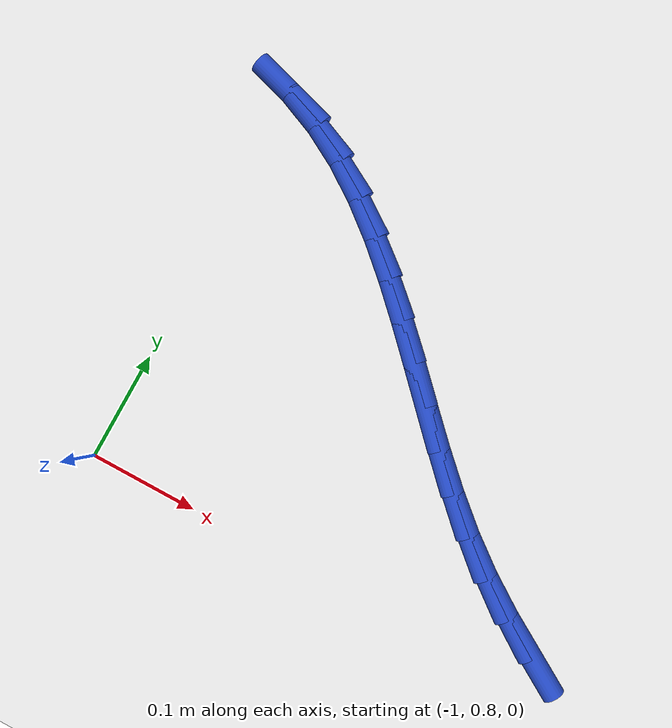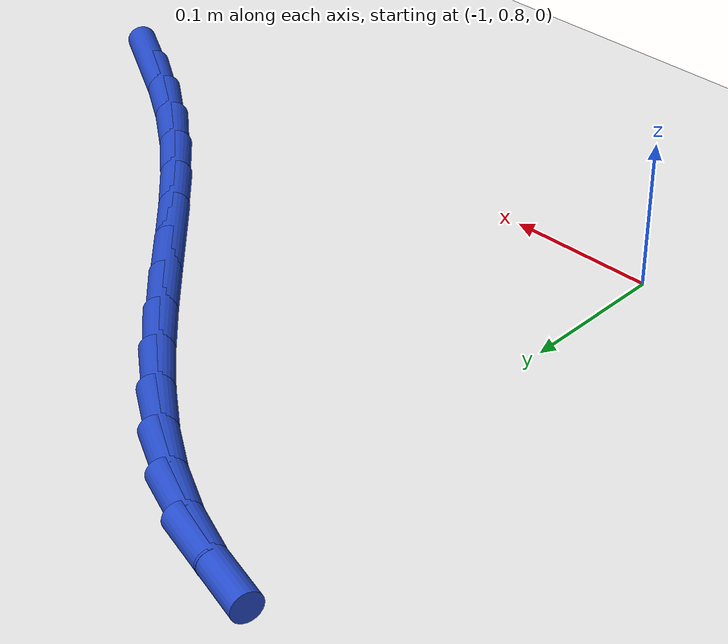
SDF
<sdf version="1.6">
 <world name="default">
  <model name="ground_plane">
   <static>1</static>
   <link name="link">
    <collision name="collision">
     <geometry><plane><normal>0 0 1</normal><size>100 100</size></plane></geometry>
     <surface><friction><ode><mu>100</mu><mu2>50</mu2></ode></friction></surface>
    </collision>
    <visual name="visual">
     <cast_shadows>0</cast_shadows>
     <geometry><plane><normal>0 0 1</normal><size>100 100</size></plane></geometry>
     <material>
      <script><uri>file://media/materials/scripts/gazebo.material</uri><name>Gazebo/WhiteGlow</name></script>
     </material>
    </visual>
   </link>
  </model>
  <model name="line">
   <link name="link_28">
    <pose>-0.5814744070034661 0.8318338093045117 0.01 0 1.57 -0.5396023647115948</pose>
    <collision name="collision">
     <geometry><cylinder><radius>0.01</radius><length>0.08</length></cylinder></geometry>
    </collision>
    <visual name="visual">
     <material>
      <script><name>Gazebo/Blue</name><uri>file://media/materials/scripts/gazebo.material</uri></script>
     </material>
     <geometry><cylinder><radius>0.01</radius><length>0.08</length></cylinder></geometry>
    </visual>
   </link>
   <link name="link_29">
    <pose>-0.6146297253421301 0.8516901727055649 0.01 0 1.57 -0.5938359373206173</pose>
    <collision name="collision">
     <geometry><cylinder><radius>0.01</radius><length>0.08</length></cylinder></geometry>
    </collision>
    <visual name="visual">
     <material>
      <script><name>Gazebo/Blue</name><uri>file://media/materials/scripts/gazebo.material</uri></script>
     </material>
     <geometry><cylinder><radius>0.01</radius><length>0.08</length></cylinder></geometry>
    </visual>
   </link>
   <link name="link_30">
    <pose>-0.6466778986591456 0.8733267144634322 0.01 0 1.57 -0.6600343421150673</pose>
    <collision name="collision">
     <geometry><cylinder><radius>0.01</radius><length>0.08</length></cylinder></geometry>
    </collision>
    <visual name="visual">
     <material>
      <script><name>Gazebo/Blue</name><uri>file://media/materials/scripts/gazebo.material</uri></script>
     </material>
     <geometry><cylinder><radius>0.01</radius><length>0.08</length></cylinder></geometry>
    </visual>
   </link>
   <link name="link_31">
    <pose>-0.6773601640706979 0.8971410598061532 0.01 0 1.57 -0.7209493918232626</pose>
    <collision name="collision">
     <geometry><cylinder><radius>0.01</radius><length>0.08</length></cylinder></geometry>
    </collision>
    <visual name="visual">
     <material>
      <script><name>Gazebo/Blue</name><uri>file://media/materials/scripts/gazebo.material</uri></script>
     </material>
     <geometry><cylinder><radius>0.01</radius><length>0.08</length></cylinder></geometry>
    </visual>
   </link>
   <link name="link_32">
    <pose>-0.7067544776524084 0.9229712837624436 0.01 0 1.57 -0.7647690480422902</pose>
    <collision name="collision">
     <geometry><cylinder><radius>0.01</radius><length>0.08</length></cylinder></geometry>
    </collision>
    <visual name="visual">
     <material>
      <script><name>Gazebo/Blue</name><uri>file://media/materials/scripts/gazebo.material</uri></script>
     </material>
     <geometry><cylinder><radius>0.01</radius><length>0.08</length></cylinder></geometry>
    </visual>
   </link>
   <link name="link_33">
    <pose>-0.7351826971803456 0.9502501523005189 0.01 0 1.57 -0.7918654375088664</pose>
    <collision name="collision">
     <geometry><cylinder><radius>0.01</radius><length>0.08</length></cylinder></geometry>
    </collision>
    <visual name="visual">
     <material>
      <script><name>Gazebo/Blue</name><uri>file://media/materials/scripts/gazebo.material</uri></script>
     </material>
     <geometry><cylinder><radius>0.01</radius><length>0.08</length></cylinder></geometry>
    </visual>
   </link>
   <link name="link_34">
    <pose>-0.7629721306492725 0.978401374366791 0.01 0 1.57 -0.8027290159153724</pose>
    <collision name="collision">
     <geometry><cylinder><radius>0.01</radius><length>0.08</length></cylinder></geometry>
    </collision>
    <visual name="visual">
     <material>
      <script><name>Gazebo/Blue</name><uri>file://media/materials/scripts/gazebo.material</uri></script>
     </material>
     <geometry><cylinder><radius>0.01</radius><length>0.08</length></cylinder></geometry>
    </visual>
   </link>
   <link name="link_35">
    <pose>-0.7904500860539536 1.0068486589076735 0.01 0 1.57 -0.7974935212478353</pose>
    <collision name="collision">
     <geometry><cylinder><radius>0.01</radius><length>0.08</length></cylinder></geometry>
    </collision>
    <visual name="visual">
     <material>
      <script><name>Gazebo/Blue</name><uri>file://media/materials/scripts/gazebo.material</uri></script>
     </material>
     <geometry><cylinder><radius>0.01</radius><length>0.08</length></cylinder></geometry>
    </visual>
   </link>
   <link name="link_36">
    <pose>-0.8179438713891519 1.035015714869578 0.01 0 1.57 -0.7758533729427121</pose>
    <collision name="collision">
     <geometry><cylinder><radius>0.01</radius><length>0.08</length></cylinder></geometry>
    </collision>
    <visual name="visual">
     <material>
      <script><name>Gazebo/Blue</name><uri>file://media/materials/scripts/gazebo.material</uri></script>
     </material>
     <geometry><cylinder><radius>0.01</radius><length>0.08</length></cylinder></geometry>
    </visual>
   </link>
   <link name="link_37">
    <pose>-0.8457807946496312 1.062326251198917 0.01 0 1.57 -0.7370835084984296</pose>
    <collision name="collision">
     <geometry><cylinder><radius>0.01</radius><length>0.08</length></cylinder></geometry>
    </collision>
    <visual name="visual">
     <material>
      <script><name>Gazebo/Blue</name><uri>file://media/materials/scripts/gazebo.material</uri></script>
     </material>
     <geometry><cylinder><radius>0.01</radius><length>0.08</length></cylinder></geometry>
    </visual>
   </link>
   <link name="link_38">
    <pose>-0.8742881638301547 1.0882039768421035 0.01 0 1.57 -0.6801837960113646</pose>
    <collision name="collision">
     <geometry><cylinder><radius>0.01</radius><length>0.08</length></cylinder></geometry>
    </collision>
    <visual name="visual">
     <material>
      <script><name>Gazebo/Blue</name><uri>file://media/materials/scripts/gazebo.material</uri></script>
     </material>
     <geometry><cylinder><radius>0.01</radius><length>0.08</length></cylinder></geometry>
    </visual>
   </link>
   <link name="link_39">
    <pose>-0.9037932869254865 1.11207260074555 0.01 0 1.57 -0.6042115472105837</pose>
    <collision name="collision">
     <geometry><cylinder><radius>0.01</radius><length>0.08</length></cylinder></geometry>
    </collision>
    <visual name="visual">
     <material>
      <script><name>Gazebo/Blue</name><uri>file://media/materials/scripts/gazebo.material</uri></script>
     </material>
     <geometry><cylinder><radius>0.01</radius><length>0.08</length></cylinder></geometry>
    </visual>
   </link>
   <link name="link_40">
    <pose>-0.9346234719303901 1.133355831855668 0.01 0 1.57 -0.5088771930069838</pose>
    <collision name="collision">
     <geometry><cylinder><radius>0.01</radius><length>0.08</length></cylinder></geometry>
    </collision>
    <visual name="visual">
     <material>
      <script><name>Gazebo/Blue</name><uri>file://media/materials/scripts/gazebo.material</uri></script>
     </material>
     <geometry><cylinder><radius>0.01</radius><length>0.08</length></cylinder></geometry>
    </visual>
   </link>
   <link name="link_41">
    <pose>-0.9671060268396291 1.1514773791188715 0.01 0 1.57 -0.3993842038170686</pose>
    <collision name="collision">
     <geometry><cylinder><radius>0.01</radius><length>0.08</length></cylinder></geometry>
    </collision>
    <visual name="visual">
     <material>
      <script><name>Gazebo/Blue</name><uri>file://media/materials/scripts/gazebo.material</uri></script>
     </material>
     <geometry><cylinder><radius>0.01</radius><length>0.08</length></cylinder></geometry>
    </visual>
   </link>
   <link name="link_42">
    <pose>-1.0014712898155775 1.165981840963148 0.01 0 1.57 -0.29454954107456244</pose>
    <collision name="collision">
     <geometry><cylinder><radius>0.01</radius><length>0.08</length></cylinder></geometry>
    </collision>
    <visual name="visual">
     <material>
      <script><name>Gazebo/Blue</name><uri>file://media/materials/scripts/gazebo.material</uri></script>
     </material>
     <geometry><cylinder><radius>0.01</radius><length>0.08</length></cylinder></geometry>
    </visual>
   </link>
  </model>
 </world>
</sdf>
